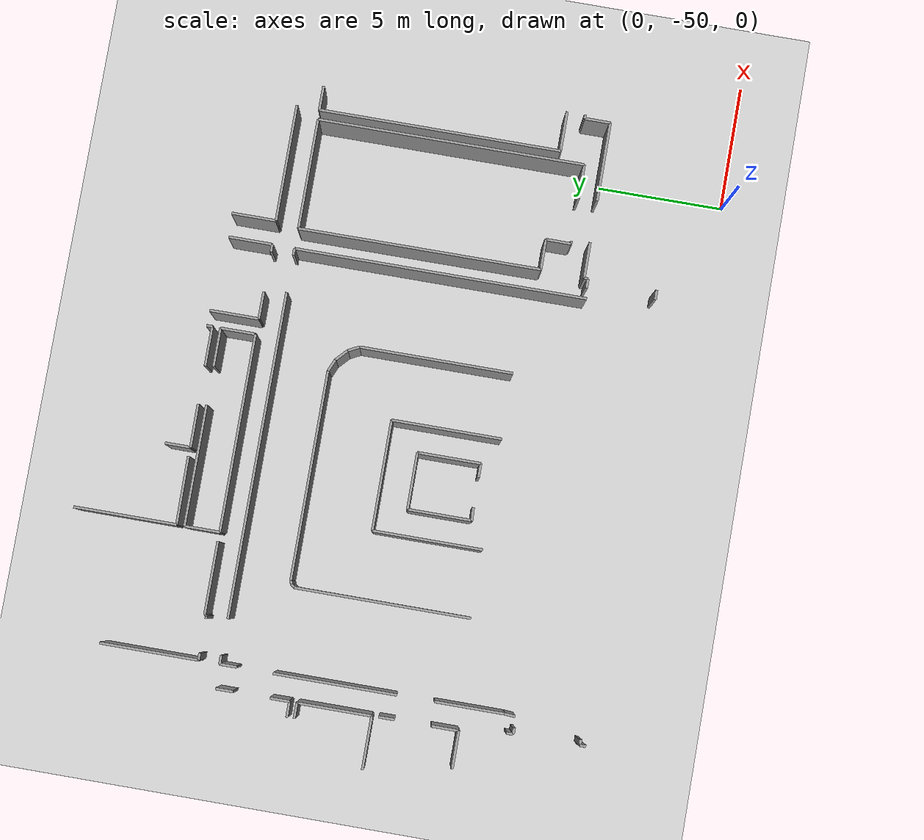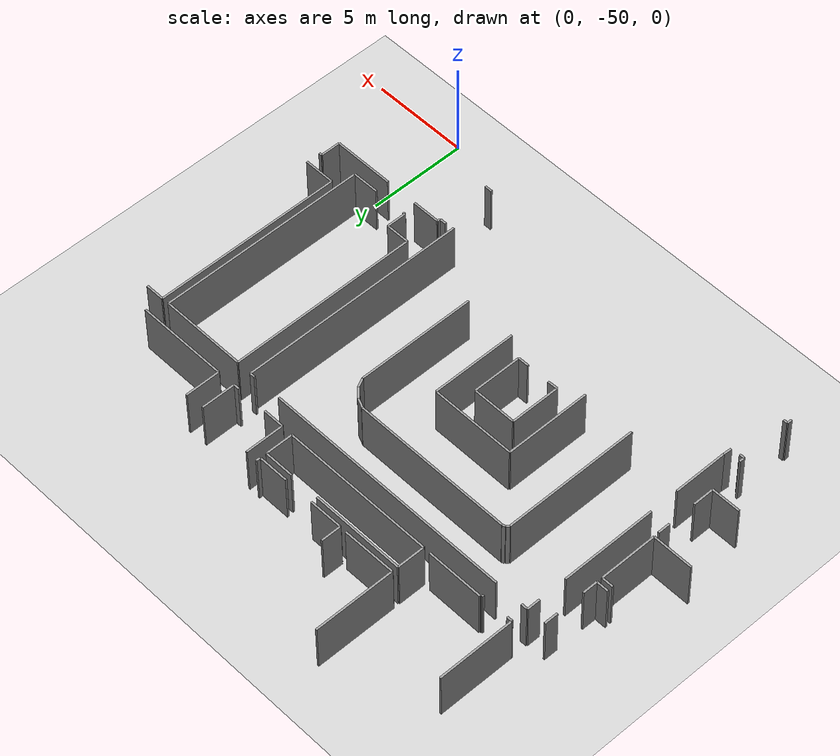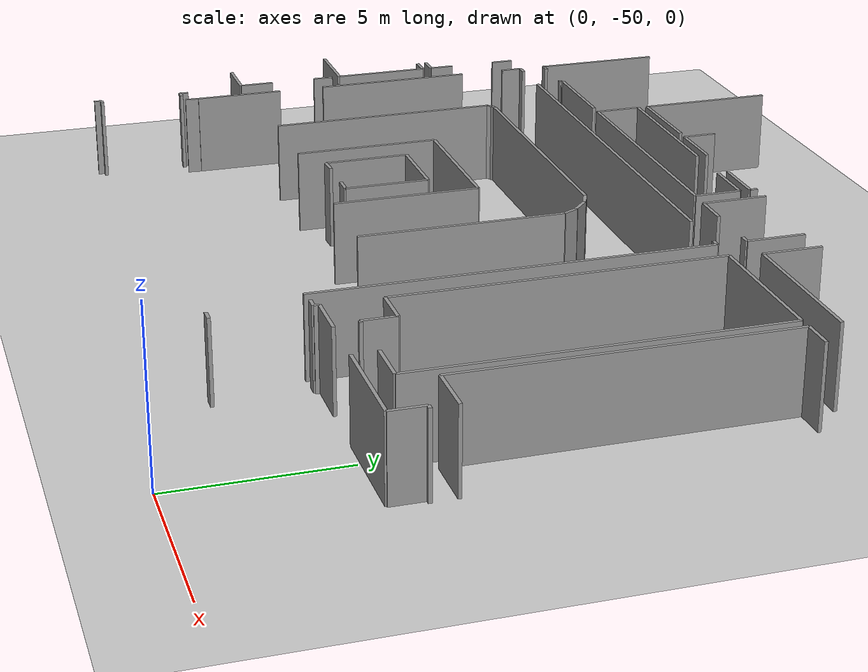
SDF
<sdf version="1.6">
 <world name="default">
  <model name="ground_plane">
   <static>1</static>
   <link name="link">
    <collision name="collision">
     <geometry><plane><normal>0 0 1</normal><size>100 100</size></plane></geometry>
     <surface><friction><ode><mu>100</mu><mu2>50</mu2></ode></friction></surface>
    </collision>
    <visual name="visual">
     <cast_shadows>0</cast_shadows>
     <geometry><plane><normal>0 0 1</normal><size>100 100</size></plane></geometry>
     <material>
      <script><uri>file://media/materials/scripts/gazebo.material</uri><name>Gazebo/Grey</name></script>
     </material>
    </visual>
   </link>
  </model>
  <model name="0510045925_40">
   <static>1</static>
   <link name="Wall_1098">
    <collision name="Wall_1098_Collision">
     <geometry><box><size>1.73218953834 0.1 2.5</size></box></geometry>
     <pose>0.866094769168 0 1.25 0 0 0</pose>
    </collision>
    <visual name="Wall_1098_Visual">
     <pose>0.866094769168 0 1.25 0 0 0</pose>
     <geometry><box><size>1.73218953834 0.1 2.5</size></box></geometry>
     <material>
      <script><uri>file://media/materials/scripts/gazebo.material</uri><name>Gazebo/Grey</name></script>
      <ambient>1 1 1 1</ambient>
     </material>
    </visual>
    <pose>129.108449024 -132.002664907 0 0 0 -1.57079632679</pose>
   </link>
   <link name="Wall_1099">
    <collision name="Wall_1099_Collision">
     <geometry><box><size>0.29745437933 0.1 2.5</size></box></geometry>
     <pose>0.148727189665 0 1.25 0 0 0</pose>
    </collision>
    <visual name="Wall_1099_Visual">
     <pose>0.148727189665 0 1.25 0 0 0</pose>
     <geometry><box><size>0.29745437933 0.1 2.5</size></box></geometry>
     <material>
      <script><uri>file://media/materials/scripts/gazebo.material</uri><name>Gazebo/Grey</name></script>
      <ambient>1 1 1 1</ambient>
     </material>
    </visual>
    <pose>129.108449024 -133.734854445 0 0 0 3.14159265359</pose>
   </link>
   <link name="Wall_1100">
    <collision name="Wall_1100_Collision">
     <geometry><box><size>1.08144463338 0.1 2.5</size></box></geometry>
     <pose>0.540722316692 0 1.25 0 0 0</pose>
    </collision>
    <visual name="Wall_1100_Visual">
     <pose>0.540722316692 0 1.25 0 0 0</pose>
     <geometry><box><size>1.08144463338 0.1 2.5</size></box></geometry>
     <material>
      <script><uri>file://media/materials/scripts/gazebo.material</uri><name>Gazebo/Grey</name></script>
      <ambient>1 1 1 1</ambient>
     </material>
    </visual>
    <pose>127.214080861 -133.734854445 0 0 0 3.14159265359</pose>
   </link>
   <link name="Wall_1101">
    <collision name="Wall_1101_Collision">
     <geometry><box><size>1.94741250222 0.1 2.5</size></box></geometry>
     <pose>0.97370625111 0 1.25 0 0 0</pose>
    </collision>
    <visual name="Wall_1101_Visual">
     <pose>0.97370625111 0 1.25 0 0 0</pose>
     <geometry><box><size>1.94741250222 0.1 2.5</size></box></geometry>
     <material>
      <script><uri>file://media/materials/scripts/gazebo.material</uri><name>Gazebo/Grey</name></script>
      <ambient>1 1 1 1</ambient>
     </material>
    </visual>
    <pose>126.132636228 -133.734854445 0 0 0 1.57079632679</pose>
   </link>
   <link name="Wall_1109">
    <collision name="Wall_1109_Collision">
     <geometry><box><size>4.05268901805 0.1 2.5</size></box></geometry>
     <pose>2.02634450902 0 1.25 0 0 0</pose>
    </collision>
    <visual name="Wall_1109_Visual">
     <pose>2.02634450902 0 1.25 0 0 0</pose>
     <geometry><box><size>4.05268901805 0.1 2.5</size></box></geometry>
     <material>
      <script><uri>file://media/materials/scripts/gazebo.material</uri><name>Gazebo/Grey</name></script>
      <ambient>1 1 1 1</ambient>
     </material>
    </visual>
    <pose>117.693002716 -132.020430954 0 0 0 1.57079632679</pose>
   </link>
   <link name="Wall_1113">
    <collision name="Wall_1113_Collision">
     <geometry><box><size>2.68303977791 0.1 2.5</size></box></geometry>
     <pose>1.34151988896 0 1.25 0 0 0</pose>
    </collision>
    <visual name="Wall_1113_Visual">
     <pose>1.34151988896 0 1.25 0 0 0</pose>
     <geometry><box><size>2.68303977791 0.1 2.5</size></box></geometry>
     <material>
      <script><uri>file://media/materials/scripts/gazebo.material</uri><name>Gazebo/Grey</name></script>
      <ambient>1 1 1 1</ambient>
     </material>
    </visual>
    <pose>120.375929545 -131.995812289 0 0 0 -3.13241686344</pose>
   </link>
   <link name="Wall_1114">
    <collision name="Wall_1114_Collision">
     <geometry><box><size>1.38981244131 0.1 2.5</size></box></geometry>
     <pose>0.694906220654 0 1.25 0 0 0</pose>
    </collision>
    <visual name="Wall_1114_Visual">
     <pose>0.694906220654 0 1.25 0 0 0</pose>
     <geometry><box><size>1.38981244131 0.1 2.5</size></box></geometry>
     <material>
      <script><uri>file://media/materials/scripts/gazebo.material</uri><name>Gazebo/Grey</name></script>
      <ambient>1 1 1 1</ambient>
     </material>
    </visual>
    <pose>117.69071851 -133.718611203 0 0 0 1.57079632679</pose>
   </link>
   <link name="Wall_1115">
    <collision name="Wall_1115_Collision">
     <geometry><box><size>4.76916829522 0.1 2.5</size></box></geometry>
     <pose>2.38458414761 0 1.25 0 0 0</pose>
    </collision>
    <visual name="Wall_1115_Visual">
     <pose>2.38458414761 0 1.25 0 0 0</pose>
     <geometry><box><size>4.76916829522 0.1 2.5</size></box></geometry>
     <material>
      <script><uri>file://media/materials/scripts/gazebo.material</uri><name>Gazebo/Grey</name></script>
      <ambient>1 1 1 1</ambient>
     </material>
    </visual>
    <pose>117.69071851 -132.328798761 0 0 0 0.0</pose>
   </link>
   <link name="Wall_1116">
    <collision name="Wall_1116_Collision">
     <geometry><box><size>1.52762620238 0.1 2.5</size></box></geometry>
     <pose>0.76381310119 0 1.25 0 0 0</pose>
    </collision>
    <visual name="Wall_1116_Visual">
     <pose>0.76381310119 0 1.25 0 0 0</pose>
     <geometry><box><size>1.52762620238 0.1 2.5</size></box></geometry>
     <material>
      <script><uri>file://media/materials/scripts/gazebo.material</uri><name>Gazebo/Grey</name></script>
      <ambient>1 1 1 1</ambient>
     </material>
    </visual>
    <pose>123.990051014 -132.328798761 0 0 0 0.0</pose>
   </link>
   <link name="Wall_1117">
    <collision name="Wall_1117_Collision">
     <geometry><box><size>1.38092941804 0.1 2.5</size></box></geometry>
     <pose>0.690464709018 0 1.25 0 0 0</pose>
    </collision>
    <visual name="Wall_1117_Visual">
     <pose>0.690464709018 0 1.25 0 0 0</pose>
     <geometry><box><size>1.38092941804 0.1 2.5</size></box></geometry>
     <material>
      <script><uri>file://media/materials/scripts/gazebo.material</uri><name>Gazebo/Grey</name></script>
      <ambient>1 1 1 1</ambient>
     </material>
    </visual>
    <pose>125.517677216 -132.328798761 0 0 0 -1.57079632679</pose>
   </link>
   <link name="Wall_1118">
    <collision name="Wall_1118_Collision">
     <geometry><box><size>7.82696374742 0.1 2.5</size></box></geometry>
     <pose>3.91348187371 0 1.25 0 0 0</pose>
    </collision>
    <visual name="Wall_1118_Visual">
     <pose>3.91348187371 0 1.25 0 0 0</pose>
     <geometry><box><size>7.82696374742 0.1 2.5</size></box></geometry>
     <material>
      <script><uri>file://media/materials/scripts/gazebo.material</uri><name>Gazebo/Grey</name></script>
      <ambient>1 1 1 1</ambient>
     </material>
    </visual>
    <pose>125.517677216 -133.709728179 0 0 0 -3.14045772752</pose>
   </link>
   <link name="Wall_1119">
    <collision name="Wall_1119_Collision">
     <geometry><box><size>1.00505063323 0.1 2.5</size></box></geometry>
     <pose>0.502525316616 0 1.25 0 0 0</pose>
    </collision>
    <visual name="Wall_1119_Visual">
     <pose>0.502525316616 0 1.25 0 0 0</pose>
     <geometry><box><size>1.00505063323 0.1 2.5</size></box></geometry>
     <material>
      <script><uri>file://media/materials/scripts/gazebo.material</uri><name>Gazebo/Grey</name></script>
      <ambient>1 1 1 1</ambient>
     </material>
    </visual>
    <pose>120.733027081 -132.013324535 0 0 0 1.57079632679</pose>
   </link>
   <link name="Wall_1123">
    <collision name="Wall_1123_Collision">
     <geometry><box><size>0.226897794472 0.1 2.5</size></box></geometry>
     <pose>0.113448897236 0 1.25 0 0 0</pose>
    </collision>
    <visual name="Wall_1123_Visual">
     <pose>0.113448897236 0 1.25 0 0 0</pose>
     <geometry><box><size>0.226897794472 0.1 2.5</size></box></geometry>
     <material>
      <script><uri>file://media/materials/scripts/gazebo.material</uri><name>Gazebo/Grey</name></script>
      <ambient>1 1 1 1</ambient>
     </material>
    </visual>
    <pose>125.524022233 -131.776020913 0 0 0 -1.57079632679</pose>
   </link>
   <link name="Wall_1124">
    <collision name="Wall_1124_Collision">
     <geometry><box><size>1.56036648816 0.1 2.5</size></box></geometry>
     <pose>0.78018324408 0 1.25 0 0 0</pose>
    </collision>
    <visual name="Wall_1124_Visual">
     <pose>0.78018324408 0 1.25 0 0 0</pose>
     <geometry><box><size>1.56036648816 0.1 2.5</size></box></geometry>
     <material>
      <script><uri>file://media/materials/scripts/gazebo.material</uri><name>Gazebo/Grey</name></script>
      <ambient>1 1 1 1</ambient>
     </material>
    </visual>
    <pose>125.524022233 -132.002918708 0 0 0 3.14159265359</pose>
   </link>
   <link name="Wall_1125">
    <collision name="Wall_1125_Collision">
     <geometry><box><size>1.71090192726 0.1 2.5</size></box></geometry>
     <pose>0.855450963632 0 1.25 0 0 0</pose>
    </collision>
    <visual name="Wall_1125_Visual">
     <pose>0.855450963632 0 1.25 0 0 0</pose>
     <geometry><box><size>1.71090192726 0.1 2.5</size></box></geometry>
     <material>
      <script><uri>file://media/materials/scripts/gazebo.material</uri><name>Gazebo/Grey</name></script>
      <ambient>1 1 1 1</ambient>
     </material>
    </visual>
    <pose>122.443897363 -132.002918708 0 0 0 -3.13551054494</pose>
   </link>
   <link name="Wall_1128">
    <collision name="Wall_1128_Collision">
     <geometry><box><size>4.6585112053 0.1 2.5</size></box></geometry>
     <pose>2.32925560265 0 1.25 0 0 0</pose>
    </collision>
    <visual name="Wall_1128_Visual">
     <pose>2.32925560265 0 1.25 0 0 0</pose>
     <geometry><box><size>4.6585112053 0.1 2.5</size></box></geometry>
     <material>
      <script><uri>file://media/materials/scripts/gazebo.material</uri><name>Gazebo/Grey</name></script>
      <ambient>1 1 1 1</ambient>
     </material>
    </visual>
    <pose>134.714398112 -133.710489581 0 0 0 3.14159265359</pose>
   </link>
   <link name="Wall_1129">
    <collision name="Wall_1129_Collision">
     <geometry><box><size>1.7570620035 0.1 2.5</size></box></geometry>
     <pose>0.878531001751 0 1.25 0 0 0</pose>
    </collision>
    <visual name="Wall_1129_Visual">
     <pose>0.878531001751 0 1.25 0 0 0</pose>
     <geometry><box><size>1.7570620035 0.1 2.5</size></box></geometry>
     <material>
      <script><uri>file://media/materials/scripts/gazebo.material</uri><name>Gazebo/Grey</name></script>
      <ambient>1 1 1 1</ambient>
     </material>
    </visual>
    <pose>130.055886906 -133.710489581 0 0 0 1.57079632679</pose>
   </link>
   <link name="Wall_1141">
    <collision name="Wall_1141_Collision">
     <geometry><box><size>3.82350701759 0.1 2.5</size></box></geometry>
     <pose>1.91175350879 0 1.25 0 0 0</pose>
    </collision>
    <visual name="Wall_1141_Visual">
     <pose>1.91175350879 0 1.25 0 0 0</pose>
     <geometry><box><size>3.82350701759 0.1 2.5</size></box></geometry>
     <material>
      <script><uri>file://media/materials/scripts/gazebo.material</uri><name>Gazebo/Grey</name></script>
      <ambient>1 1 1 1</ambient>
     </material>
    </visual>
    <pose>112.718002081 -133.745767874 0 0 0 1.57079632679</pose>
   </link>
   <link name="Wall_1146">
    <collision name="Wall_1146_Collision">
     <geometry><box><size>2.87632293597 0.1 2.5</size></box></geometry>
     <pose>1.43816146798 0 1.25 0 0 0</pose>
    </collision>
    <visual name="Wall_1146_Visual">
     <pose>1.43816146798 0 1.25 0 0 0</pose>
     <geometry><box><size>2.87632293597 0.1 2.5</size></box></geometry>
     <material>
      <script><uri>file://media/materials/scripts/gazebo.material</uri><name>Gazebo/Grey</name></script>
      <ambient>1 1 1 1</ambient>
     </material>
    </visual>
    <pose>117.330067765 -133.70998198 0 0 0 3.14159265359</pose>
   </link>
   <link name="Wall_1147">
    <collision name="Wall_1147_Collision">
     <geometry><box><size>0.078424405472 0.1 2.5</size></box></geometry>
     <pose>0.039212202736 0 1.25 0 0 0</pose>
    </collision>
    <visual name="Wall_1147_Visual">
     <pose>0.039212202736 0 1.25 0 0 0</pose>
     <geometry><box><size>0.078424405472 0.1 2.5</size></box></geometry>
     <material>
      <script><uri>file://media/materials/scripts/gazebo.material</uri><name>Gazebo/Grey</name></script>
      <ambient>1 1 1 1</ambient>
     </material>
    </visual>
    <pose>114.453744829 -133.70998198 0 0 0 -1.57079632679</pose>
   </link>
   <link name="Wall_1148">
    <collision name="Wall_1148_Collision">
     <geometry><box><size>0.122078119845 0.1 2.5</size></box></geometry>
     <pose>0.0610390599223 0 1.25 0 0 0</pose>
    </collision>
    <visual name="Wall_1148_Visual">
     <pose>0.0610390599223 0 1.25 0 0 0</pose>
     <geometry><box><size>0.122078119845 0.1 2.5</size></box></geometry>
     <material>
      <script><uri>file://media/materials/scripts/gazebo.material</uri><name>Gazebo/Grey</name></script>
      <ambient>1 1 1 1</ambient>
     </material>
    </visual>
    <pose>114.453744829 -133.788406386 0 0 0 3.14159265359</pose>
   </link>
   <link name="Wall_1149">
    <collision name="Wall_1149_Collision">
     <geometry><box><size>0.275627522144 0.1 2.5</size></box></geometry>
     <pose>0.137813761072 0 1.25 0 0 0</pose>
    </collision>
    <visual name="Wall_1149_Visual">
     <pose>0.137813761072 0 1.25 0 0 0</pose>
     <geometry><box><size>0.275627522144 0.1 2.5</size></box></geometry>
     <material>
      <script><uri>file://media/materials/scripts/gazebo.material</uri><name>Gazebo/Grey</name></script>
      <ambient>1 1 1 1</ambient>
     </material>
    </visual>
    <pose>112.9923606 -133.788406386 0 0 0 3.14159265359</pose>
   </link>
   <link name="Wall_1150">
    <collision name="Wall_1150_Collision">
     <geometry><box><size>0.0426573915111 0.1 2.5</size></box></geometry>
     <pose>0.0213286957555 0 1.25 0 0 0</pose>
    </collision>
    <visual name="Wall_1150_Visual">
     <pose>0.0213286957555 0 1.25 0 0 0</pose>
     <geometry><box><size>0.0426573915111 0.1 2.5</size></box></geometry>
     <material>
      <script><uri>file://media/materials/scripts/gazebo.material</uri><name>Gazebo/Grey</name></script>
      <ambient>1 1 1 1</ambient>
     </material>
    </visual>
    <pose>112.716733078 -133.788406386 0 0 0 1.54104320478</pose>
   </link>
   <link name="Wall_1310">
    <collision name="Wall_1310_Collision">
     <geometry><box><size>0.257100073602 0.1 2.5</size></box></geometry>
     <pose>0.128550036801 0 1.25 0 0 0</pose>
    </collision>
    <visual name="Wall_1310_Visual">
     <pose>0.128550036801 0 1.25 0 0 0</pose>
     <geometry><box><size>0.257100073602 0.1 2.5</size></box></geometry>
     <material>
      <script><uri>file://media/materials/scripts/gazebo.material</uri><name>Gazebo/Grey</name></script>
      <ambient>1 1 1 1</ambient>
     </material>
    </visual>
    <pose>112.0 -145.924646583 0 0 0 -1.57079632679</pose>
   </link>
   <link name="Wall_1311">
    <collision name="Wall_1311_Collision">
     <geometry><box><size>0.241872033705 0.1 2.5</size></box></geometry>
     <pose>0.120936016852 0 1.25 0 0 0</pose>
    </collision>
    <visual name="Wall_1311_Visual">
     <pose>0.120936016852 0 1.25 0 0 0</pose>
     <geometry><box><size>0.241872033705 0.1 2.5</size></box></geometry>
     <material>
      <script><uri>file://media/materials/scripts/gazebo.material</uri><name>Gazebo/Grey</name></script>
      <ambient>1 1 1 1</ambient>
     </material>
    </visual>
    <pose>112.0 -146.181746656 0 0 0 0.0</pose>
   </link>
   <link name="Wall_1312">
    <collision name="Wall_1312_Collision">
     <geometry><box><size>0.226643993807 0.1 2.5</size></box></geometry>
     <pose>0.113321996904 0 1.25 0 0 0</pose>
    </collision>
    <visual name="Wall_1312_Visual">
     <pose>0.113321996904 0 1.25 0 0 0</pose>
     <geometry><box><size>0.226643993807 0.1 2.5</size></box></geometry>
     <material>
      <script><uri>file://media/materials/scripts/gazebo.material</uri><name>Gazebo/Grey</name></script>
      <ambient>1 1 1 1</ambient>
     </material>
    </visual>
    <pose>112.241872034 -148.773305246 0 0 0 3.14159265359</pose>
   </link>
   <link name="Wall_1313">
    <collision name="Wall_1313_Collision">
     <geometry><box><size>0.234004213091 0.1 2.5</size></box></geometry>
     <pose>0.117002106546 0 1.25 0 0 0</pose>
    </collision>
    <visual name="Wall_1313_Visual">
     <pose>0.117002106546 0 1.25 0 0 0</pose>
     <geometry><box><size>0.234004213091 0.1 2.5</size></box></geometry>
     <material>
      <script><uri>file://media/materials/scripts/gazebo.material</uri><name>Gazebo/Grey</name></script>
      <ambient>1 1 1 1</ambient>
     </material>
    </visual>
    <pose>112.01522804 -148.773305246 0 0 0 -1.57079632679</pose>
   </link>
   <link name="Wall_1378">
    <collision name="Wall_1378_Collision">
     <geometry><box><size>0.591863150681 0.1 2.5</size></box></geometry>
     <pose>0.295931575341 0 1.25 0 0 0</pose>
    </collision>
    <visual name="Wall_1378_Visual">
     <pose>0.295931575341 0 1.25 0 0 0</pose>
     <geometry><box><size>0.591863150681 0.1 2.5</size></box></geometry>
     <material>
      <script><uri>file://media/materials/scripts/gazebo.material</uri><name>Gazebo/Grey</name></script>
      <ambient>1 1 1 1</ambient>
     </material>
    </visual>
    <pose>111.163473008 -137.802771503 0 0 0 0.0</pose>
   </link>
   <link name="Wall_1379">
    <collision name="Wall_1379_Collision">
     <geometry><box><size>2.92048425167 0.1 2.5</size></box></geometry>
     <pose>1.46024212583 0 1.25 0 0 0</pose>
    </collision>
    <visual name="Wall_1379_Visual">
     <pose>1.46024212583 0 1.25 0 0 0</pose>
     <geometry><box><size>2.92048425167 0.1 2.5</size></box></geometry>
     <material>
      <script><uri>file://media/materials/scripts/gazebo.material</uri><name>Gazebo/Grey</name></script>
      <ambient>1 1 1 1</ambient>
     </material>
    </visual>
    <pose>111.755336159 -137.802771503 0 0 0 -1.57079632679</pose>
   </link>
   <link name="Wall_1380">
    <collision name="Wall_1380_Collision">
     <geometry><box><size>2.06721091874 0.1 2.5</size></box></geometry>
     <pose>1.03360545937 0 1.25 0 0 0</pose>
    </collision>
    <visual name="Wall_1380_Visual">
     <pose>1.03360545937 0 1.25 0 0 0</pose>
     <geometry><box><size>2.06721091874 0.1 2.5</size></box></geometry>
     <material>
      <script><uri>file://media/materials/scripts/gazebo.material</uri><name>Gazebo/Grey</name></script>
      <ambient>1 1 1 1</ambient>
     </material>
    </visual>
    <pose>111.755336159 -140.723255755 0 0 0 3.13950548658</pose>
   </link>
   <link name="Wall_1383">
    <collision name="Wall_1383_Collision">
     <geometry><box><size>0.683231390066 0.1 2.5</size></box></geometry>
     <pose>0.341615695033 0 1.25 0 0 0</pose>
    </collision>
    <visual name="Wall_1383_Visual">
     <pose>0.341615695033 0 1.25 0 0 0</pose>
     <geometry><box><size>0.683231390066 0.1 2.5</size></box></geometry>
     <material>
      <script><uri>file://media/materials/scripts/gazebo.material</uri><name>Gazebo/Grey</name></script>
      <ambient>1 1 1 1</ambient>
     </material>
    </visual>
    <pose>111.758889368 -134.634577803 0 0 0 -1.57079632679</pose>
   </link>
   <link name="Wall_1384">
    <collision name="Wall_1384_Collision">
     <geometry><box><size>0.764193802188 0.1 2.5</size></box></geometry>
     <pose>0.382096901094 0 1.25 0 0 0</pose>
    </collision>
    <visual name="Wall_1384_Visual">
     <pose>0.382096901094 0 1.25 0 0 0</pose>
     <geometry><box><size>0.764193802188 0.1 2.5</size></box></geometry>
     <material>
      <script><uri>file://media/materials/scripts/gazebo.material</uri><name>Gazebo/Grey</name></script>
      <ambient>1 1 1 1</ambient>
     </material>
    </visual>
    <pose>111.758889368 -136.751275348 0 0 0 -1.57079632679</pose>
   </link>
   <link name="Wall_1385">
    <collision name="Wall_1385_Collision">
     <geometry><box><size>0.614197609198 0.1 2.5</size></box></geometry>
     <pose>0.307098804599 0 1.25 0 0 0</pose>
    </collision>
    <visual name="Wall_1385_Visual">
     <pose>0.307098804599 0 1.25 0 0 0</pose>
     <geometry><box><size>0.614197609198 0.1 2.5</size></box></geometry>
     <material>
      <script><uri>file://media/materials/scripts/gazebo.material</uri><name>Gazebo/Grey</name></script>
      <ambient>1 1 1 1</ambient>
     </material>
    </visual>
    <pose>111.758889368 -137.515469151 0 0 0 3.14159265359</pose>
   </link>
   <link name="Wall_1390">
    <collision name="Wall_1390_Collision">
     <geometry><box><size>0.628918047765 0.1 2.5</size></box></geometry>
     <pose>0.314459023883 0 1.25 0 0 0</pose>
    </collision>
    <visual name="Wall_1390_Visual">
     <pose>0.314459023883 0 1.25 0 0 0</pose>
     <geometry><box><size>0.628918047765 0.1 2.5</size></box></geometry>
     <material>
      <script><uri>file://media/materials/scripts/gazebo.material</uri><name>Gazebo/Grey</name></script>
      <ambient>1 1 1 1</ambient>
     </material>
    </visual>
    <pose>111.768787594 -140.984924241 0 0 0 -1.57079632679</pose>
   </link>
   <link name="Wall_1391">
    <collision name="Wall_1391_Collision">
     <geometry><box><size>1.06621659349 0.1 2.5</size></box></geometry>
     <pose>0.533108296744 0 1.25 0 0 0</pose>
    </collision>
    <visual name="Wall_1391_Visual">
     <pose>0.533108296744 0 1.25 0 0 0</pose>
     <geometry><box><size>1.06621659349 0.1 2.5</size></box></geometry>
     <material>
      <script><uri>file://media/materials/scripts/gazebo.material</uri><name>Gazebo/Grey</name></script>
      <ambient>1 1 1 1</ambient>
     </material>
    </visual>
    <pose>111.768787594 -143.033857009 0 0 0 -1.57079632679</pose>
   </link>
   <link name="Wall_1392">
    <collision name="Wall_1392_Collision">
     <geometry><box><size>1.47838887338 0.1 2.5</size></box></geometry>
     <pose>0.739194436689 0 1.25 0 0 0</pose>
    </collision>
    <visual name="Wall_1392_Visual">
     <pose>0.739194436689 0 1.25 0 0 0</pose>
     <geometry><box><size>1.47838887338 0.1 2.5</size></box></geometry>
     <material>
      <script><uri>file://media/materials/scripts/gazebo.material</uri><name>Gazebo/Grey</name></script>
      <ambient>1 1 1 1</ambient>
     </material>
    </visual>
    <pose>111.768787594 -144.100073602 0 0 0 3.14159265359</pose>
   </link>
   <link name="Wall_1395">
    <collision name="Wall_1395_Collision">
     <geometry><box><size>2.51897159971 0.1 2.5</size></box></geometry>
     <pose>1.25948579985 0 1.25 0 0 0</pose>
    </collision>
    <visual name="Wall_1395_Visual">
     <pose>1.25948579985 0 1.25 0 0 0</pose>
     <geometry><box><size>2.51897159971 0.1 2.5</size></box></geometry>
     <material>
      <script><uri>file://media/materials/scripts/gazebo.material</uri><name>Gazebo/Grey</name></script>
      <ambient>1 1 1 1</ambient>
     </material>
    </visual>
    <pose>119.798786833 -143.235882338 0 0 0 1.57079632679</pose>
   </link>
   <link name="Wall_1396">
    <collision name="Wall_1396_Collision">
     <geometry><box><size>2.23902946626 0.1 2.5</size></box></geometry>
     <pose>1.11951473313 0 1.25 0 0 0</pose>
    </collision>
    <visual name="Wall_1396_Visual">
     <pose>1.11951473313 0 1.25 0 0 0</pose>
     <geometry><box><size>2.23902946626 0.1 2.5</size></box></geometry>
     <material>
      <script><uri>file://media/materials/scripts/gazebo.material</uri><name>Gazebo/Grey</name></script>
      <ambient>1 1 1 1</ambient>
     </material>
    </visual>
    <pose>119.798786833 -140.716910738 0 0 0 0.0</pose>
   </link>
   <link name="Wall_1397">
    <collision name="Wall_1397_Collision">
     <geometry><box><size>2.49384533387 0.1 2.5</size></box></geometry>
     <pose>1.24692266694 0 1.25 0 0 0</pose>
    </collision>
    <visual name="Wall_1397_Visual">
     <pose>1.24692266694 0 1.25 0 0 0</pose>
     <geometry><box><size>2.49384533387 0.1 2.5</size></box></geometry>
     <material>
      <script><uri>file://media/materials/scripts/gazebo.material</uri><name>Gazebo/Grey</name></script>
      <ambient>1 1 1 1</ambient>
     </material>
    </visual>
    <pose>122.037816299 -140.716910738 0 0 0 -1.57079632679</pose>
   </link>
   <link name="Wall_1398">
    <collision name="Wall_1398_Collision">
     <geometry><box><size>0.547701834979 0.1 2.5</size></box></geometry>
     <pose>0.273850917489 0 1.25 0 0 0</pose>
    </collision>
    <visual name="Wall_1398_Visual">
     <pose>0.273850917489 0 1.25 0 0 0</pose>
     <geometry><box><size>0.547701834979 0.1 2.5</size></box></geometry>
     <material>
      <script><uri>file://media/materials/scripts/gazebo.material</uri><name>Gazebo/Grey</name></script>
      <ambient>1 1 1 1</ambient>
     </material>
    </visual>
    <pose>122.037816299 -143.210756072 0 0 0 3.14159265359</pose>
   </link>
   <link name="Wall_1399">
    <collision name="Wall_1399_Collision">
     <geometry><box><size>0.512785699622 0.1 2.5</size></box></geometry>
     <pose>0.256392849811 0 1.25 0 0 0</pose>
    </collision>
    <visual name="Wall_1399_Visual">
     <pose>0.256392849811 0 1.25 0 0 0</pose>
     <geometry><box><size>0.512785699622 0.1 2.5</size></box></geometry>
     <material>
      <script><uri>file://media/materials/scripts/gazebo.material</uri><name>Gazebo/Grey</name></script>
      <ambient>1 1 1 1</ambient>
     </material>
    </visual>
    <pose>120.310956575 -143.210756072 0 0 0 -3.09257348001</pose>
   </link>
   <link name="Wall_1400">
    <collision name="Wall_1400_Collision">
     <geometry><box><size>8.24141519251 0.1 2.5</size></box></geometry>
     <pose>4.12070759625 0 1.25 0 0 0</pose>
    </collision>
    <visual name="Wall_1400_Visual">
     <pose>4.12070759625 0 1.25 0 0 0</pose>
     <geometry><box><size>8.24141519251 0.1 2.5</size></box></geometry>
     <material>
      <script><uri>file://media/materials/scripts/gazebo.material</uri><name>Gazebo/Grey</name></script>
      <ambient>1 1 1 1</ambient>
     </material>
    </visual>
    <pose>116.339483769 -136.746960737 0 0 0 0.0</pose>
   </link>
   <link name="Wall_1401">
    <collision name="Wall_1401_Collision">
     <geometry><box><size>0.511794122539 0.1 2.5</size></box></geometry>
     <pose>0.25589706127 0 1.25 0 0 0</pose>
    </collision>
    <visual name="Wall_1401_Visual">
     <pose>0.25589706127 0 1.25 0 0 0</pose>
     <geometry><box><size>0.511794122539 0.1 2.5</size></box></geometry>
     <material>
      <script><uri>file://media/materials/scripts/gazebo.material</uri><name>Gazebo/Grey</name></script>
      <ambient>1 1 1 1</ambient>
     </material>
    </visual>
    <pose>124.580898962 -136.746960737 0 0 0 -0.411728952649</pose>
   </link>
   <link name="Wall_1402">
    <collision name="Wall_1402_Collision">
     <geometry><box><size>0.602443714622 0.1 2.5</size></box></geometry>
     <pose>0.301221857311 0 1.25 0 0 0</pose>
    </collision>
    <visual name="Wall_1402_Visual">
     <pose>0.301221857311 0 1.25 0 0 0</pose>
     <geometry><box><size>0.602443714622 0.1 2.5</size></box></geometry>
     <material>
      <script><uri>file://media/materials/scripts/gazebo.material</uri><name>Gazebo/Grey</name></script>
      <ambient>1 1 1 1</ambient>
     </material>
    </visual>
    <pose>125.049922591 -136.951777874 0 0 0 -0.751729817812</pose>
   </link>
   <link name="Wall_1403">
    <collision name="Wall_1403_Collision">
     <geometry><box><size>0.487084804529 0.1 2.5</size></box></geometry>
     <pose>0.243542402264 0 1.25 0 0 0</pose>
    </collision>
    <visual name="Wall_1403_Visual">
     <pose>0.243542402264 0 1.25 0 0 0</pose>
     <geometry><box><size>0.487084804529 0.1 2.5</size></box></geometry>
     <material>
      <script><uri>file://media/materials/scripts/gazebo.material</uri><name>Gazebo/Grey</name></script>
      <ambient>1 1 1 1</ambient>
     </material>
    </visual>
    <pose>125.490012944 -137.363188752 0 0 0 -1.09386588216</pose>
   </link>
   <link name="Wall_1404">
    <collision name="Wall_1404_Collision">
     <geometry><box><size>6.05746047055 0.1 2.5</size></box></geometry>
     <pose>3.02873023527 0 1.25 0 0 0</pose>
    </collision>
    <visual name="Wall_1404_Visual">
     <pose>3.02873023527 0 1.25 0 0 0</pose>
     <geometry><box><size>6.05746047055 0.1 2.5</size></box></geometry>
     <material>
      <script><uri>file://media/materials/scripts/gazebo.material</uri><name>Gazebo/Grey</name></script>
      <ambient>1 1 1 1</ambient>
     </material>
    </visual>
    <pose>125.71361133 -137.795918885 0 0 0 -1.57079632679</pose>
   </link>
   <link name="Wall_1405">
    <collision name="Wall_1405_Collision">
     <geometry><box><size>4.33643816147 0.1 2.5</size></box></geometry>
     <pose>2.16821908073 0 1.25 0 0 0</pose>
    </collision>
    <visual name="Wall_1405_Visual">
     <pose>2.16821908073 0 1.25 0 0 0</pose>
     <geometry><box><size>4.33643816147 0.1 2.5</size></box></geometry>
     <material>
      <script><uri>file://media/materials/scripts/gazebo.material</uri><name>Gazebo/Grey</name></script>
      <ambient>1 1 1 1</ambient>
     </material>
    </visual>
    <pose>123.112662115 -143.853379356 0 0 0 1.57079632679</pose>
   </link>
   <link name="Wall_1406">
    <collision name="Wall_1406_Collision">
     <geometry><box><size>4.35750361666 0.1 2.5</size></box></geometry>
     <pose>2.17875180833 0 1.25 0 0 0</pose>
    </collision>
    <visual name="Wall_1406_Visual">
     <pose>2.17875180833 0 1.25 0 0 0</pose>
     <geometry><box><size>4.35750361666 0.1 2.5</size></box></geometry>
     <material>
      <script><uri>file://media/materials/scripts/gazebo.material</uri><name>Gazebo/Grey</name></script>
      <ambient>1 1 1 1</ambient>
     </material>
    </visual>
    <pose>123.112662115 -139.516941194 0 0 0 3.14159265359</pose>
   </link>
   <link name="Wall_1407">
    <collision name="Wall_1407_Collision">
     <geometry><box><size>4.3260323342 0.1 2.5</size></box></geometry>
     <pose>2.1630161671 0 1.25 0 0 0</pose>
    </collision>
    <visual name="Wall_1407_Visual">
     <pose>2.1630161671 0 1.25 0 0 0</pose>
     <geometry><box><size>4.3260323342 0.1 2.5</size></box></geometry>
     <material>
      <script><uri>file://media/materials/scripts/gazebo.material</uri><name>Gazebo/Grey</name></script>
      <ambient>1 1 1 1</ambient>
     </material>
    </visual>
    <pose>118.755158499 -139.516941194 0 0 0 -1.57079632679</pose>
   </link>
   <link name="Wall_1408">
    <collision name="Wall_1408_Collision">
     <geometry><box><size>6.91149970813 0.1 2.5</size></box></geometry>
     <pose>3.45574985406 0 1.25 0 0 0</pose>
    </collision>
    <visual name="Wall_1408_Visual">
     <pose>3.45574985406 0 1.25 0 0 0</pose>
     <geometry><box><size>6.91149970813 0.1 2.5</size></box></geometry>
     <material>
      <script><uri>file://media/materials/scripts/gazebo.material</uri><name>Gazebo/Grey</name></script>
      <ambient>1 1 1 1</ambient>
     </material>
    </visual>
    <pose>116.0839065 -143.842973529 0 0 0 1.57079632679</pose>
   </link>
   <link name="Wall_1409">
    <collision name="Wall_1409_Collision">
     <geometry><box><size>0.168667489703 0.1 2.5</size></box></geometry>
     <pose>0.0843337448514 0 1.25 0 0 0</pose>
    </collision>
    <visual name="Wall_1409_Visual">
     <pose>0.0843337448514 0 1.25 0 0 0</pose>
     <geometry><box><size>0.168667489703 0.1 2.5</size></box></geometry>
     <material>
      <script><uri>file://media/materials/scripts/gazebo.material</uri><name>Gazebo/Grey</name></script>
      <ambient>1 1 1 1</ambient>
     </material>
    </visual>
    <pose>116.0839065 -136.93147382 0 0 0 0.863149326429</pose>
   </link>
   <link name="Wall_1410">
    <collision name="Wall_1410_Collision">
     <geometry><box><size>0.156434502965 0.1 2.5</size></box></geometry>
     <pose>0.0782172514823 0 1.25 0 0 0</pose>
    </collision>
    <visual name="Wall_1410_Visual">
     <pose>0.0782172514823 0 1.25 0 0 0</pose>
     <geometry><box><size>0.156434502965 0.1 2.5</size></box></geometry>
     <material>
      <script><uri>file://media/materials/scripts/gazebo.material</uri><name>Gazebo/Grey</name></script>
      <ambient>1 1 1 1</ambient>
     </material>
    </visual>
    <pose>116.193548387 -136.803304485 0 0 0 0.368455137718</pose>
   </link>
   <link name="Wall_1411">
    <collision name="Wall_1411_Collision">
     <geometry><box><size>2.72987995229 0.1 2.5</size></box></geometry>
     <pose>1.36493997614 0 1.25 0 0 0</pose>
    </collision>
    <visual name="Wall_1411_Visual">
     <pose>1.36493997614 0 1.25 0 0 0</pose>
     <geometry><box><size>2.72987995229 0.1 2.5</size></box></geometry>
     <material>
      <script><uri>file://media/materials/scripts/gazebo.material</uri><name>Gazebo/Grey</name></script>
      <ambient>1 1 1 1</ambient>
     </material>
    </visual>
    <pose>112.707088653 -145.723890257 0 0 0 1.57079632679</pose>
   </link>
   <link name="Wall_1412">
    <collision name="Wall_1412_Collision">
     <geometry><box><size>4.83515646811 0.1 2.5</size></box></geometry>
     <pose>2.41757823405 0 1.25 0 0 0</pose>
    </collision>
    <visual name="Wall_1412_Visual">
     <pose>2.41757823405 0 1.25 0 0 0</pose>
     <geometry><box><size>4.83515646811 0.1 2.5</size></box></geometry>
     <material>
      <script><uri>file://media/materials/scripts/gazebo.material</uri><name>Gazebo/Grey</name></script>
      <ambient>1 1 1 1</ambient>
     </material>
    </visual>
    <pose>112.707088653 -141.537702089 0 0 0 1.57079632679</pose>
   </link>
   <link name="Wall_1413">
    <collision name="Wall_1413_Collision">
     <geometry><box><size>0.662673536205 0.1 2.5</size></box></geometry>
     <pose>0.331336768102 0 1.25 0 0 0</pose>
    </collision>
    <visual name="Wall_1413_Visual">
     <pose>0.331336768102 0 1.25 0 0 0</pose>
     <geometry><box><size>0.662673536205 0.1 2.5</size></box></geometry>
     <material>
      <script><uri>file://media/materials/scripts/gazebo.material</uri><name>Gazebo/Grey</name></script>
      <ambient>1 1 1 1</ambient>
     </material>
    </visual>
    <pose>112.707088653 -135.280246694 0 0 0 1.57079632679</pose>
   </link>
   <link name="Wall_1414">
    <collision name="Wall_1414_Collision">
     <geometry><box><size>0.336032080404 0.1 2.5</size></box></geometry>
     <pose>0.168016040202 0 1.25 0 0 0</pose>
    </collision>
    <visual name="Wall_1414_Visual">
     <pose>0.168016040202 0 1.25 0 0 0</pose>
     <geometry><box><size>0.336032080404 0.1 2.5</size></box></geometry>
     <material>
      <script><uri>file://media/materials/scripts/gazebo.material</uri><name>Gazebo/Grey</name></script>
      <ambient>1 1 1 1</ambient>
     </material>
    </visual>
    <pose>112.707088653 -134.617573158 0 0 0 0.0</pose>
   </link>
   <link name="Wall_1415">
    <collision name="Wall_1415_Collision">
     <geometry><box><size>12.8783533413 0.1 2.5</size></box></geometry>
     <pose>6.43917667064 0 1.25 0 0 0</pose>
    </collision>
    <visual name="Wall_1415_Visual">
     <pose>6.43917667064 0 1.25 0 0 0</pose>
     <geometry><box><size>12.8783533413 0.1 2.5</size></box></geometry>
     <material>
      <script><uri>file://media/materials/scripts/gazebo.material</uri><name>Gazebo/Grey</name></script>
      <ambient>1 1 1 1</ambient>
     </material>
    </visual>
    <pose>114.464404457 -134.617573158 0 0 0 0.0</pose>
   </link>
   <link name="Wall_1416">
    <collision name="Wall_1416_Collision">
     <geometry><box><size>0.257100073602 0.1 2.5</size></box></geometry>
     <pose>0.128550036801 0 1.25 0 0 0</pose>
    </collision>
    <visual name="Wall_1416_Visual">
     <pose>0.128550036801 0 1.25 0 0 0</pose>
     <geometry><box><size>0.257100073602 0.1 2.5</size></box></geometry>
     <material>
      <script><uri>file://media/materials/scripts/gazebo.material</uri><name>Gazebo/Grey</name></script>
      <ambient>1 1 1 1</ambient>
     </material>
    </visual>
    <pose>128.838912718 -134.617573158 0 0 0 0.0</pose>
   </link>
   <link name="Wall_1417">
    <collision name="Wall_1417_Collision">
     <geometry><box><size>11.5821933453 0.1 2.5</size></box></geometry>
     <pose>5.79109667267 0 1.25 0 0 0</pose>
    </collision>
    <visual name="Wall_1417_Visual">
     <pose>5.79109667267 0 1.25 0 0 0</pose>
     <geometry><box><size>11.5821933453 0.1 2.5</size></box></geometry>
     <material>
      <script><uri>file://media/materials/scripts/gazebo.material</uri><name>Gazebo/Grey</name></script>
      <ambient>1 1 1 1</ambient>
     </material>
    </visual>
    <pose>129.096012792 -134.617573158 0 0 0 -1.57079632679</pose>
   </link>
   <link name="Wall_1422">
    <collision name="Wall_1422_Collision">
     <geometry><box><size>0.415790251359 0.1 2.5</size></box></geometry>
     <pose>0.20789512568 0 1.25 0 0 0</pose>
    </collision>
    <visual name="Wall_1422_Visual">
     <pose>0.20789512568 0 1.25 0 0 0</pose>
     <geometry><box><size>0.415790251359 0.1 2.5</size></box></geometry>
     <material>
      <script><uri>file://media/materials/scripts/gazebo.material</uri><name>Gazebo/Grey</name></script>
      <ambient>1 1 1 1</ambient>
     </material>
    </visual>
    <pose>112.677140174 -146.138600543 0 0 0 1.49870604926</pose>
   </link>
   <link name="Wall_1559">
    <collision name="Wall_1559_Collision">
     <geometry><box><size>4.40471054034 0.1 2.5</size></box></geometry>
     <pose>2.20235527017 0 1.25 0 0 0</pose>
    </collision>
    <visual name="Wall_1559_Visual">
     <pose>2.20235527017 0 1.25 0 0 0</pose>
     <geometry><box><size>4.40471054034 0.1 2.5</size></box></geometry>
     <material>
      <script><uri>file://media/materials/scripts/gazebo.material</uri><name>Gazebo/Grey</name></script>
      <ambient>1 1 1 1</ambient>
     </material>
    </visual>
    <pose>129.90462171 -134.630516992 0 0 0 0.0</pose>
   </link>
   <link name="Wall_1560">
    <collision name="Wall_1560_Collision">
     <geometry><box><size>10.6040455826 0.1 2.5</size></box></geometry>
     <pose>5.3020227913 0 1.25 0 0 0</pose>
    </collision>
    <visual name="Wall_1560_Visual">
     <pose>5.3020227913 0 1.25 0 0 0</pose>
     <geometry><box><size>10.6040455826 0.1 2.5</size></box></geometry>
     <material>
      <script><uri>file://media/materials/scripts/gazebo.material</uri><name>Gazebo/Grey</name></script>
      <ambient>1 1 1 1</ambient>
     </material>
    </visual>
    <pose>134.30933225 -134.630516992 0 0 0 -1.57079632679</pose>
   </link>
   <link name="Wall_1561">
    <collision name="Wall_1561_Collision">
     <geometry><box><size>1.37052359077 0.1 2.5</size></box></geometry>
     <pose>0.685261795386 0 1.25 0 0 0</pose>
    </collision>
    <visual name="Wall_1561_Visual">
     <pose>0.685261795386 0 1.25 0 0 0</pose>
     <geometry><box><size>1.37052359077 0.1 2.5</size></box></geometry>
     <material>
      <script><uri>file://media/materials/scripts/gazebo.material</uri><name>Gazebo/Grey</name></script>
      <ambient>1 1 1 1</ambient>
     </material>
    </visual>
    <pose>134.30933225 -145.234562575 0 0 0 3.14159265359</pose>
   </link>
   <link name="Wall_1562">
    <collision name="Wall_1562_Collision">
     <geometry><box><size>0.113956498566 0.1 2.5</size></box></geometry>
     <pose>0.056978249283 0 1.25 0 0 0</pose>
    </collision>
    <visual name="Wall_1562_Visual">
     <pose>0.056978249283 0 1.25 0 0 0</pose>
     <geometry><box><size>0.113956498566 0.1 2.5</size></box></geometry>
     <material>
      <script><uri>file://media/materials/scripts/gazebo.material</uri><name>Gazebo/Grey</name></script>
      <ambient>1 1 1 1</ambient>
     </material>
    </visual>
    <pose>131.24062841 -145.234562575 0 0 0 3.14159265359</pose>
   </link>
   <link name="Wall_1563">
    <collision name="Wall_1563_Collision">
     <geometry><box><size>0.99312200198 0.1 2.5</size></box></geometry>
     <pose>0.49656100099 0 1.25 0 0 0</pose>
    </collision>
    <visual name="Wall_1563_Visual">
     <pose>0.49656100099 0 1.25 0 0 0</pose>
     <geometry><box><size>0.99312200198 0.1 2.5</size></box></geometry>
     <material>
      <script><uri>file://media/materials/scripts/gazebo.material</uri><name>Gazebo/Grey</name></script>
      <ambient>1 1 1 1</ambient>
     </material>
    </visual>
    <pose>131.126671912 -145.234562575 0 0 0 1.57079632679</pose>
   </link>
   <link name="Wall_1564">
    <collision name="Wall_1564_Collision">
     <geometry><box><size>1.20428415522 0.1 2.5</size></box></geometry>
     <pose>0.602142077612 0 1.25 0 0 0</pose>
    </collision>
    <visual name="Wall_1564_Visual">
     <pose>0.602142077612 0 1.25 0 0 0</pose>
     <geometry><box><size>1.20428415522 0.1 2.5</size></box></geometry>
     <material>
      <script><uri>file://media/materials/scripts/gazebo.material</uri><name>Gazebo/Grey</name></script>
      <ambient>1 1 1 1</ambient>
     </material>
    </visual>
    <pose>131.126671912 -144.241440573 0 0 0 3.14159265359</pose>
   </link>
   <link name="Wall_1565">
    <collision name="Wall_1565_Collision">
     <geometry><box><size>9.61094000111 0.1 2.5</size></box></geometry>
     <pose>4.80547000055 0 1.25 0 0 0</pose>
    </collision>
    <visual name="Wall_1565_Visual">
     <pose>4.80547000055 0 1.25 0 0 0</pose>
     <geometry><box><size>9.61094000111 0.1 2.5</size></box></geometry>
     <material>
      <script><uri>file://media/materials/scripts/gazebo.material</uri><name>Gazebo/Grey</name></script>
      <ambient>1 1 1 1</ambient>
     </material>
    </visual>
    <pose>129.922387757 -144.241440573 0 0 0 1.57264485115</pose>
   </link>
   <link name="Wall_1566">
    <collision name="Wall_1566_Collision">
     <geometry><box><size>9.6096545773 0.1 2.5</size></box></geometry>
     <pose>4.80482728865 0 1.25 0 0 0</pose>
    </collision>
    <visual name="Wall_1566_Visual">
     <pose>4.80482728865 0 1.25 0 0 0</pose>
     <geometry><box><size>9.6096545773 0.1 2.5</size></box></geometry>
     <material>
      <script><uri>file://media/materials/scripts/gazebo.material</uri><name>Gazebo/Grey</name></script>
      <ambient>1 1 1 1</ambient>
     </material>
    </visual>
    <pose>134.689779447 -144.222151722 0 0 0 1.57079632679</pose>
   </link>
   <link name="Wall_1567">
    <collision name="Wall_1567_Collision">
     <geometry><box><size>0.962158320855 0.1 2.5</size></box></geometry>
     <pose>0.481079160427 0 1.25 0 0 0</pose>
    </collision>
    <visual name="Wall_1567_Visual">
     <pose>0.481079160427 0 1.25 0 0 0</pose>
     <geometry><box><size>0.962158320855 0.1 2.5</size></box></geometry>
     <material>
      <script><uri>file://media/materials/scripts/gazebo.material</uri><name>Gazebo/Grey</name></script>
      <ambient>1 1 1 1</ambient>
     </material>
    </visual>
    <pose>134.689779447 -134.612497145 0 0 0 0.0</pose>
   </link>
   <link name="Wall_1575">
    <collision name="Wall_1575_Collision">
     <geometry><box><size>1.58853844307 0.1 2.5</size></box></geometry>
     <pose>0.794269221535 0 1.25 0 0 0</pose>
    </collision>
    <visual name="Wall_1575_Visual">
     <pose>0.794269221535 0 1.25 0 0 0</pose>
     <geometry><box><size>1.58853844307 0.1 2.5</size></box></geometry>
     <material>
      <script><uri>file://media/materials/scripts/gazebo.material</uri><name>Gazebo/Grey</name></script>
      <ambient>1 1 1 1</ambient>
     </material>
    </visual>
    <pose>136.278317809 -144.222659323 0 0 0 3.14127311374</pose>
   </link>
   <link name="Wall_1576">
    <collision name="Wall_1576_Collision">
     <geometry><box><size>1.42661353773 0.1 2.5</size></box></geometry>
     <pose>0.713306768864 0 1.25 0 0 0</pose>
    </collision>
    <visual name="Wall_1576_Visual">
     <pose>0.713306768864 0 1.25 0 0 0</pose>
     <geometry><box><size>1.42661353773 0.1 2.5</size></box></geometry>
     <material>
      <script><uri>file://media/materials/scripts/gazebo.material</uri><name>Gazebo/Grey</name></script>
      <ambient>1 1 1 1</ambient>
     </material>
    </visual>
    <pose>129.880003046 -145.966016091 0 0 0 0.0</pose>
   </link>
   <link name="Wall_1577">
    <collision name="Wall_1577_Collision">
     <geometry><box><size>3.14509784016 0.1 2.5</size></box></geometry>
     <pose>1.57254892008 0 1.25 0 0 0</pose>
    </collision>
    <visual name="Wall_1577_Visual">
     <pose>1.57254892008 0 1.25 0 0 0</pose>
     <geometry><box><size>3.14509784016 0.1 2.5</size></box></geometry>
     <material>
      <script><uri>file://media/materials/scripts/gazebo.material</uri><name>Gazebo/Grey</name></script>
      <ambient>1 1 1 1</ambient>
     </material>
    </visual>
    <pose>132.981447171 -145.966016091 0 0 0 0.0</pose>
   </link>
   <link name="Wall_1578">
    <collision name="Wall_1578_Collision">
     <geometry><box><size>1.01291845385 0.1 2.5</size></box></geometry>
     <pose>0.506459226923 0 1.25 0 0 0</pose>
    </collision>
    <visual name="Wall_1578_Visual">
     <pose>0.506459226923 0 1.25 0 0 0</pose>
     <geometry><box><size>1.01291845385 0.1 2.5</size></box></geometry>
     <material>
      <script><uri>file://media/materials/scripts/gazebo.material</uri><name>Gazebo/Grey</name></script>
      <ambient>1 1 1 1</ambient>
     </material>
    </visual>
    <pose>136.126545012 -145.966016091 0 0 0 1.57079632679</pose>
   </link>
   <link name="Wall_1579">
    <collision name="Wall_1579_Collision">
     <geometry><box><size>0.156595010279 0.1 2.5</size></box></geometry>
     <pose>0.0782975051395 0 1.25 0 0 0</pose>
    </collision>
    <visual name="Wall_1579_Visual">
     <pose>0.0782975051395 0 1.25 0 0 0</pose>
     <geometry><box><size>0.156595010279 0.1 2.5</size></box></geometry>
     <material>
      <script><uri>file://media/materials/scripts/gazebo.material</uri><name>Gazebo/Grey</name></script>
      <ambient>1 1 1 1</ambient>
     </material>
    </visual>
    <pose>136.126545012 -144.953097637 0 0 0 0.0</pose>
   </link>
   <link name="Wall_1663">
    <collision name="Wall_1663_Collision">
     <geometry><box><size>0.382223801426 0.1 2.5</size></box></geometry>
     <pose>0.191111900713 0 1.25 0 0 0</pose>
    </collision>
    <visual name="Wall_1663_Visual">
     <pose>0.191111900713 0 1.25 0 0 0</pose>
     <geometry><box><size>0.382223801426 0.1 2.5</size></box></geometry>
     <material>
      <script><uri>file://media/materials/scripts/gazebo.material</uri><name>Gazebo/Grey</name></script>
      <ambient>1 1 1 1</ambient>
     </material>
    </visual>
    <pose>129.896500089 -148.83599401 0 0 0 3.14159265359</pose>
   </link>
   <link name="Wall_1664">
    <collision name="Wall_1664_Collision">
     <geometry><box><size>0.350752518972 0.1 2.5</size></box></geometry>
     <pose>0.175376259486 0 1.25 0 0 0</pose>
    </collision>
    <visual name="Wall_1664_Visual">
     <pose>0.175376259486 0 1.25 0 0 0</pose>
     <geometry><box><size>0.350752518972 0.1 2.5</size></box></geometry>
     <material>
      <script><uri>file://media/materials/scripts/gazebo.material</uri><name>Gazebo/Grey</name></script>
      <ambient>1 1 1 1</ambient>
     </material>
    </visual>
    <pose>129.514276287 -146.121595899 0 0 0 0.0</pose>
   </link>
   <link name="Wall_1665">
    <collision name="Wall_1665_Collision">
     <geometry><box><size>0.156298766404 0.1 2.5</size></box></geometry>
     <pose>0.078149383202 0 1.25 0 0 0</pose>
    </collision>
    <visual name="Wall_1665_Visual">
     <pose>0.078149383202 0 1.25 0 0 0</pose>
     <geometry><box><size>0.156298766404 0.1 2.5</size></box></geometry>
     <material>
      <script><uri>file://media/materials/scripts/gazebo.material</uri><name>Gazebo/Grey</name></script>
      <ambient>1 1 1 1</ambient>
     </material>
    </visual>
    <pose>129.865028806 -146.121595899 0 0 0 1.474843928</pose>
   </link>
   <pose>-133.95 101.083118449 0 0 0 0</pose>
  </model>
 </world>
</sdf>
